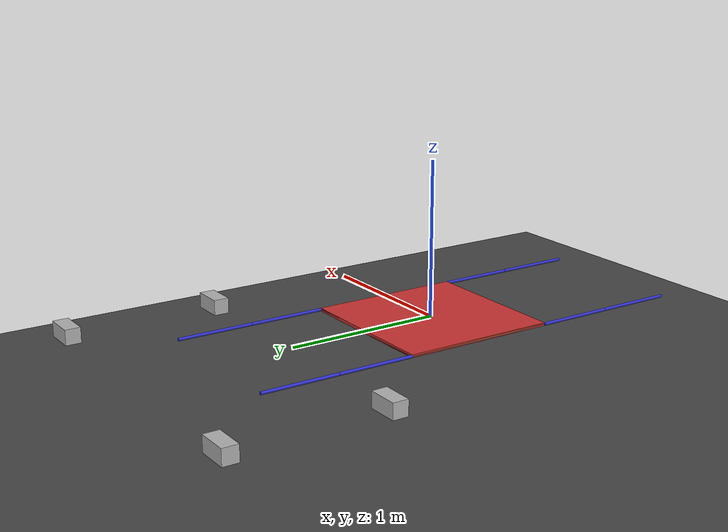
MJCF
<mujoco model="simple flying humanoid robot">
    <compiler angle="radian" />

    <option timestep="0.005" collision="predefined" gravity="0 0 0"/>

    <asset>
        <texture type="skybox" builtin="gradient" rgb1="0.6 0.6 0.6" rgb2="0 0 0" width="512" height="512"/>
        <texture name="texplane" type="2d" builtin="checker" rgb1=".25 .25 .25" rgb2=".3 .3 .3" width="512" height="512" mark="cross" markrgb=".8 .8 .8"/>
        <material name="matplane" reflectance="0.3" texture="texplane" texrepeat="1 1" texuniform="true"/>
    </asset>

    <worldbody>
        <!-- Floor & lights -->
        <geom name="floor" pos="0 0 -0.5" size="0 0 1" type="plane" material="matplane"/>
        <light directional="true" diffuse=".8 .8 .8" specular=".2 .2 .2" pos="0 0 5" dir="0 0 -1" castshadow="false"/>

        <!-- Environment -->
        <body name="rbar0" pos="1 1 0" >
            <geom name="rbar0" type="box" size="0.1 0.05 0.05" group="1" rgba="0.7 0.7 0.7 1" />
            <site name="rbar0_front" pos="0 0.05 0"  quat="0.707 0 0  0.707" type="sphere" size="1e-3" group="2" rgba="1 0 0 1" />
            <site name="rbar0_rear"  pos="0 -0.05 0" quat="0.707 0 0 -0.707" type="sphere" size="1e-3" group="2" rgba="1 0 0 1" />
        </body>
        <body name="lbar0" pos="-1 1 0" >
            <geom name="lbar0" type="box" size="0.1 0.05 0.05" group="1" rgba="0.7 0.7 0.7 1" />
            <site name="lbar0_front" pos="0 0.05 0" quat="0.707 0 0  0.707" type="sphere" size="1e-3" group="2" rgba="1 0 0 1" />
            <site name="lbar0_rear" pos="0 -0.05 0" quat="0.707 0 0 -0.707" type="sphere" size="1e-3" group="2" rgba="1 0 0 1" />
        </body>
        <body name="rbar1" pos="1 2 0" >
            <geom name="rbar1" type="box" size="0.1 0.05 0.05" group="1" rgba="0.7 0.7 0.7 1" />
            <site name="rbar1_front" pos="0 0.05 0" quat="0.707 0 0  0.707" type="sphere" size="1e-3" group="2" rgba="1 0 0 1" />
            <site name="rbar1_rear" pos="0 -0.05 0" quat="0.707 0 0 -0.707" type="sphere" size="1e-3" group="2" rgba="1 0 0 1" />
        </body>
        <body name="lbar1" pos="-1 2 0" >
            <geom name="lbar1" type="box" size="0.1 0.05 0.05" group="1" rgba="0.7 0.7 0.7 1" />
            <site name="lbar1_front" pos="0 0.05 0" quat="0.707 0 0  0.707" type="sphere" size="1e-3" group="2" rgba="1 0 0 1" />
            <site name="lbar1_rear" pos="0 -0.05 0" quat="0.707 0 0 -0.707" type="sphere" size="1e-3" group="2" rgba="1 0 0 1" />
        </body>

        <!-- Robot -->
        <body name="torso" pos="0 0 0" >
            <joint name="torso" type="free" />
            <geom name="torso" type="box" size="0.5 0.5 0.01" mass="1" group="1" rgba="0.8 0.2 0.2 1" />
            <!-- Legs -->
            <body name="left_leg_link0" pos="-0.5 -0.5 0" >
                <joint name="left_leg_joint0" pos="0 0 0" axis="0 0 1" limited="true" range="-1.5 1.5" />
                <geom name="left_leg_link0" type="cylinder" size="0.01 0.25" mass="0.5" pos="0 -0.25 0" quat="0.707107 0.707107 0 0" rgba="0.2 0.2 0.8 1" group="1" />
                <body name="left_leg_link1" pos="0 -0.5 0" >
                      <joint name="left_leg_joint1" pos="0 0 0" axis="0 0 1" limited="true" range="-1.5 1.5" />
                      <geom name="left_leg_link1" type="cylinder" size="0.01 0.25" mass="0.5" pos="0 -0.25 0" quat="0.707107 0.707107 0 0" rgba="0.2 0.2 0.8 1" group="1" />
                      <site name="left_leg_ee" pos="0 -0.5 0" type="sphere" size="1e-3" group="2" rgba="1 0 0 1" />
                </body>
            </body>
            <body name="right_leg_link0" pos="0.5 -0.5 0" >
                <joint name="right_leg_joint0" pos="0 0 0" axis="0 0 1" limited="true" range="-1.5 1.5" />
                <geom name="right_leg_link0" type="cylinder" size="0.01 0.25" mass="0.5" pos="0 -0.25 0" quat="0.707107 0.707107 0 0" rgba="0.2 0.2 0.8 1" group="1" />
                <body name="right_leg_link1" pos="0 -0.5 0" >
                      <joint name="right_leg_joint1" pos="0 0 0" axis="0 0 1" limited="true" range="-1.5 1.5" />
                      <geom name="right_leg_link1" type="cylinder" size="0.01 0.25" mass="0.5" pos="0 -0.25 0" quat="0.707107 0.707107 0 0" rgba="0.2 0.2 0.8 1" group="1" />
                      <site name="right_leg_ee" pos="0 -0.5 0" type="sphere" size="1e-3" group="2" rgba="1 0 0 1" />
                </body>
            </body>
            <!-- Arms -->
            <body name="left_arm_link0" pos="-0.5 0.5 0" >
                <joint name="left_arm_joint0" pos="0 0 0" axis="0 0 1" limited="true" range="-1.5 1.5" />
                <geom name="left_arm_link0" type="cylinder" size="0.01 0.25" mass="0.5" pos="0 0.25 0" quat="0.707107 -0.707107 0 0" rgba="0.2 0.2 0.8 1" group="1" />
                <body name="left_arm_link1" pos="0 0.5 0" >
                      <joint name="left_arm_joint1" pos="0 0 0" axis="0 0 1" limited="true" range="-1.5 1.5" />
                      <geom name="left_arm_link1" type="cylinder" size="0.01 0.25" mass="0.5" pos="0 0.25 0" quat="0.707107 -0.707107 0 0" rgba="0.2 0.2 0.8 1" group="1" />
                      <site name="left_arm_ee" pos="0 0.5 0" type="sphere" size="1e-3" group="2" rgba="1 0 0 1" />
                </body>
            </body>
            <body name="right_arm_link0" pos="0.5 0.5 0" >
                <joint name="right_arm_joint0" pos="0 0 0" axis="0 0 1" limited="true" range="-1.5 1.5" />
                <geom name="right_arm_link0" type="cylinder" size="0.01 0.25" mass="0.5" pos="0 0.25 0" quat="0.707107 -0.707107 0 0" rgba="0.2 0.2 0.8 1" group="1" />
                <body name="right_arm_link1" pos="0 0.5 0" >
                      <joint name="right_arm_joint1" pos="0 0 0" axis="0 0 1" limited="true" range="-1.5 1.5" />
                      <geom name="right_arm_link1" type="cylinder" size="0.01 0.25" mass="0.5" pos="0 0.25 0" quat="0.707107 -0.707107 0 0" rgba="0.2 0.2 0.8 1" group="1" />
                      <site name="right_arm_ee" pos="0 0.5 0" type="sphere" size="1e-3" group="2" rgba="1 0 0 1" />
                </body>
            </body>
        </body>

        <!-- Ghost representing desired pose -->
        <body name="ghost" pos="0 0 0" >
            <geom name="ghost" type="box" pos="0 0 0" size="0.5 0.5 0.005" mass="1" group="2" rgba="0.2 0.8 0.2 0.2" />
        </body>
    </worldbody>

    <actuator>
        <motor name="left_leg_j0" joint="left_leg_joint0" />
        <motor name="left_leg_j1" joint="left_leg_joint1" />
        <motor name="right_leg_j0" joint="right_leg_joint0" />
        <motor name="right_leg_j1" joint="right_leg_joint1" />
        <motor name="left_arm_j0" joint="left_arm_joint0" />
        <motor name="left_arm_j1" joint="left_arm_joint1" />
        <motor name="right_arm_j0" joint="right_arm_joint0" />
        <motor name="right_arm_j1" joint="right_arm_joint1" />
    </actuator>

    <contact>
        <pair geom1="torso"           geom2="left_leg_link1" />
        <pair geom1="torso"           geom2="right_leg_link1" />
        <pair geom1="torso"           geom2="left_arm_link1" />
        <pair geom1="torso"           geom2="right_arm_link1" />
        <pair geom1="left_arm_link1"  geom2="left_leg_link1" />
        <pair geom1="left_arm_link1"  geom2="right_arm_link1" />
        <pair geom1="left_leg_link1"  geom2="right_leg_link1" />
        <pair geom1="right_arm_link1" geom2="right_leg_link1" />
        <pair geom1="lbar0"           geom2="left_arm_link0" />
        <pair geom1="lbar0"           geom2="left_leg_link0" />
        <pair geom1="lbar0"           geom2="left_arm_link1" />
        <pair geom1="lbar0"           geom2="left_leg_link1" />
        <pair geom1="lbar1"           geom2="left_arm_link0" />
        <pair geom1="lbar1"           geom2="left_leg_link0" />
        <pair geom1="lbar1"           geom2="left_arm_link1" />
        <pair geom1="lbar1"           geom2="left_leg_link1" />
        <pair geom1="rbar0"           geom2="right_arm_link0" />
        <pair geom1="rbar0"           geom2="right_leg_link0" />
        <pair geom1="rbar0"           geom2="right_arm_link1" />
        <pair geom1="rbar0"           geom2="right_leg_link1" />
        <pair geom1="rbar1"           geom2="right_arm_link0" />
        <pair geom1="rbar1"           geom2="right_leg_link0" />
        <pair geom1="rbar1"           geom2="right_arm_link1" />
        <pair geom1="rbar1"           geom2="right_leg_link1" />
    </contact>

    <keyframe>
      <key name="init_qpos" qpos="0 0 0 1 0 0 0 0 0 0 0 0 0 0 0" />
    </keyframe>
</mujoco>
